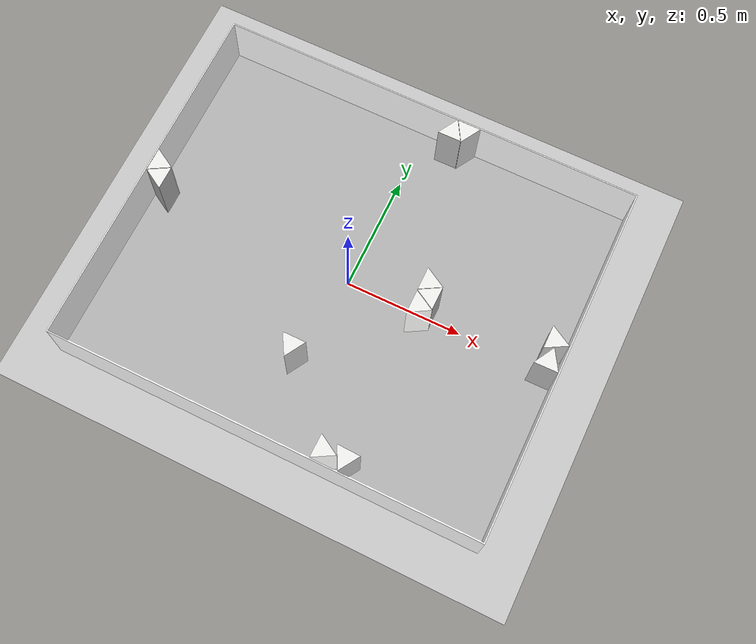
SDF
<sdf version="1.6">
 <world name="default">
  <light name="sun" type="directional">
   <pose>0 0 10 0 -0 0</pose>
   <diffuse>0.8 0.8 0.8 1</diffuse>
   <specular>0.2 0.2 0.2 1</specular>
   <attenuation>
    <range>1000</range>
    <constant>0.9</constant>
    <linear>0.01</linear>
    <quadratic>0.001</quadratic>
   </attenuation>
   <direction>-0.5 0.1 -0.9</direction>
   <spot><inner_angle>0</inner_angle><outer_angle>0</outer_angle><falloff>0</falloff></spot>
  </light>
  <model name="ground_plane">
   <static>1</static>
   <link name="link">
    <collision name="collision">
     <geometry><plane><normal>0 0 1</normal><size>100 100</size></plane></geometry>
     <surface>
      <contact><collide_bitmask>65535</collide_bitmask></contact>
      <friction><ode><mu>100</mu><mu2>50</mu2></ode></friction>
     </surface>
    </collision>
    <visual name="visual">
     <cast_shadows>0</cast_shadows>
     <geometry><plane><normal>0 0 1</normal><size>100 100</size></plane></geometry>
     <material>
      <script><uri>file://media/materials/scripts/gazebo.material</uri><name>Gazebo/Grey</name></script>
     </material>
    </visual>
   </link>
  </model>
  <gravity>0 0 -9.8</gravity>
  <magnetic_field>6e-06 2.3e-05 -4.2e-05</magnetic_field>
  <atmosphere type="adiabatic"/>
  <physics type="ode">
   <max_step_size>0.001</max_step_size>
   <real_time_factor>1</real_time_factor>
   <real_time_update_rate>1000</real_time_update_rate>
  </physics>
  <scene><ambient>0.4 0.4 0.4 1</ambient><background>0.7 0.7 0.7 1</background><shadows>1</shadows></scene>
  <audio><device>default</device></audio>
  <spherical_coordinates>
   <surface_model>EARTH_WGS84</surface_model>
   <latitude_deg>0</latitude_deg>
   <longitude_deg>0</longitude_deg>
   <elevation>0</elevation>
   <heading_deg>0</heading_deg>
  </spherical_coordinates>
  <model name="playground">
   <link name="link_0">
    <inertial>
     <mass>1</mass>
     <inertia>
      <ixx>0.166667</ixx>
      <ixy>0</ixy>
      <ixz>0</ixz>
      <iyy>0.166667</iyy>
      <iyz>0</iyz>
      <izz>0.166667</izz>
     </inertia>
    </inertial>
    <visual name="visual">
     <geometry><mesh><uri>model://playground/meshes/areana.dae</uri><scale>1 1 1</scale></mesh></geometry>
    </visual>
    <collision name="collision">
     <geometry><mesh><uri>model://playground/meshes/areana.dae</uri><scale>1 1 1</scale></mesh></geometry>
     <surface>
      <friction>
       <ode><mu>100</mu><mu2>100</mu2><fdir1>0 0 0</fdir1><slip1>0</slip1><slip2>0</slip2></ode>
       <torsional>
        <coefficient>1</coefficient>
        <patch_radius>0</patch_radius>
        <surface_radius>0</surface_radius>
        <use_patch_radius>1</use_patch_radius>
        <ode><slip>0</slip></ode>
       </torsional>
      </friction>
      <bounce><restitution_coefficient>0</restitution_coefficient><threshold>1e+06</threshold></bounce>
      <contact>
       <collide_without_contact>0</collide_without_contact>
       <collide_without_contact_bitmask>1</collide_without_contact_bitmask>
       <collide_bitmask>1</collide_bitmask>
       <ode>
        <soft_cfm>0</soft_cfm>
        <soft_erp>0.2</soft_erp>
        <kp>1e+13</kp>
        <kd>1</kd>
        <max_vel>0.01</max_vel>
        <min_depth>0</min_depth>
       </ode>
       <bullet>
        <split_impulse>1</split_impulse>
        <split_impulse_penetration_threshold>-0.01</split_impulse_penetration_threshold>
        <soft_cfm>0</soft_cfm>
        <soft_erp>0.2</soft_erp>
        <kp>1e+13</kp>
        <kd>1</kd>
       </bullet>
      </contact>
     </surface>
    </collision>
   </link>
   <static>1</static>
   <pose>0.000704 0 0 0 -0 0</pose>
  </model>
  <model name="home_obstacle">
   <link name="link_1">
    <inertial>
     <mass>1</mass>
     <inertia>
      <ixx>0.166667</ixx>
      <ixy>0</ixy>
      <ixz>0</ixz>
      <iyy>0.166667</iyy>
      <iyz>0</iyz>
      <izz>0.166667</izz>
     </inertia>
    </inertial>
    <visual name="visual">
     <geometry>
      <mesh><uri>model://home_obstacle/meshes/home_obstacle.dae</uri><scale>1 1 1</scale></mesh>
     </geometry>
    </visual>
    <collision name="collision">
     <geometry>
      <mesh><uri>model://home_obstacle/meshes/home_obstacle.dae</uri><scale>1 1 1</scale></mesh>
     </geometry>
     <surface>
      <friction>
       <ode><mu>1</mu><mu2>1</mu2><fdir1>0 0 0</fdir1><slip1>0</slip1><slip2>0</slip2></ode>
       <torsional>
        <coefficient>1</coefficient>
        <patch_radius>0</patch_radius>
        <surface_radius>0</surface_radius>
        <use_patch_radius>1</use_patch_radius>
        <ode><slip>0</slip></ode>
       </torsional>
      </friction>
      <bounce><restitution_coefficient>0</restitution_coefficient><threshold>1e+06</threshold></bounce>
      <contact>
       <collide_without_contact>0</collide_without_contact>
       <collide_without_contact_bitmask>1</collide_without_contact_bitmask>
       <collide_bitmask>1</collide_bitmask>
       <ode>
        <soft_cfm>0</soft_cfm>
        <soft_erp>0.2</soft_erp>
        <kp>1e+13</kp>
        <kd>1</kd>
        <max_vel>0.01</max_vel>
        <min_depth>0</min_depth>
       </ode>
       <bullet>
        <split_impulse>1</split_impulse>
        <split_impulse_penetration_threshold>-0.01</split_impulse_penetration_threshold>
        <soft_cfm>0</soft_cfm>
        <soft_erp>0.2</soft_erp>
        <kp>1e+13</kp>
        <kd>1</kd>
       </bullet>
      </contact>
     </surface>
    </collision>
   </link>
   <static>1</static>
   <pose>0.35 0.011265 0.005 0 -0 0</pose>
  </model>
  <model name="signal_obstacle">
   <link name="link_3">
    <inertial>
     <mass>1</mass>
     <inertia>
      <ixx>0.166667</ixx>
      <ixy>0</ixy>
      <ixz>0</ixz>
      <iyy>0.166667</iyy>
      <iyz>0</iyz>
      <izz>0.166667</izz>
     </inertia>
    </inertial>
    <visual name="visual">
     <geometry>
      <mesh><uri>model://signal_obstacle/meshes/signal_obstacle.dae</uri><scale>1 1 1</scale></mesh>
     </geometry>
    </visual>
    <collision name="collision">
     <geometry>
      <mesh><uri>model://signal_obstacle/meshes/signal_obstacle.dae</uri><scale>1 1 1</scale></mesh>
     </geometry>
     <surface>
      <friction>
       <ode><mu>1</mu><mu2>1</mu2><fdir1>0 0 0</fdir1><slip1>0</slip1><slip2>0</slip2></ode>
       <torsional>
        <coefficient>1</coefficient>
        <patch_radius>0</patch_radius>
        <surface_radius>0</surface_radius>
        <use_patch_radius>1</use_patch_radius>
        <ode><slip>0</slip></ode>
       </torsional>
      </friction>
      <bounce><restitution_coefficient>0</restitution_coefficient><threshold>1e+06</threshold></bounce>
      <contact>
       <collide_without_contact>0</collide_without_contact>
       <collide_without_contact_bitmask>1</collide_without_contact_bitmask>
       <collide_bitmask>1</collide_bitmask>
       <ode>
        <soft_cfm>0</soft_cfm>
        <soft_erp>0.2</soft_erp>
        <kp>1e+13</kp>
        <kd>1</kd>
        <max_vel>0.01</max_vel>
        <min_depth>0</min_depth>
       </ode>
       <bullet>
        <split_impulse>1</split_impulse>
        <split_impulse_penetration_threshold>-0.01</split_impulse_penetration_threshold>
        <soft_cfm>0</soft_cfm>
        <soft_erp>0.2</soft_erp>
        <kp>1e+13</kp>
        <kd>1</kd>
       </bullet>
      </contact>
     </surface>
    </collision>
   </link>
   <static>1</static>
   <pose>0.322533 -0.041605 0.005 0 -0 3.14159</pose>
  </model>
  <model name="crossing_obstacle">
   <link name="link_5">
    <inertial>
     <mass>1</mass>
     <inertia>
      <ixx>0.166667</ixx>
      <ixy>0</ixy>
      <ixz>0</ixz>
      <iyy>0.166667</iyy>
      <iyz>0</iyz>
      <izz>0.166667</izz>
     </inertia>
    </inertial>
    <visual name="visual">
     <geometry>
      <mesh><uri>model://crossing_obstacle/meshes/crossing_obstacle.dae</uri><scale>1 1 1</scale></mesh>
     </geometry>
    </visual>
    <collision name="collision">
     <geometry>
      <mesh><uri>model://crossing_obstacle/meshes/crossing_obstacle.dae</uri><scale>1 1 1</scale></mesh>
     </geometry>
     <surface>
      <friction>
       <ode><mu>1</mu><mu2>1</mu2><fdir1>0 0 0</fdir1><slip1>0</slip1><slip2>0</slip2></ode>
       <torsional>
        <coefficient>1</coefficient>
        <patch_radius>0</patch_radius>
        <surface_radius>0</surface_radius>
        <use_patch_radius>1</use_patch_radius>
        <ode><slip>0</slip></ode>
       </torsional>
      </friction>
      <bounce><restitution_coefficient>0</restitution_coefficient><threshold>1e+06</threshold></bounce>
      <contact>
       <collide_without_contact>0</collide_without_contact>
       <collide_without_contact_bitmask>1</collide_without_contact_bitmask>
       <collide_bitmask>1</collide_bitmask>
       <ode>
        <soft_cfm>0</soft_cfm>
        <soft_erp>0.2</soft_erp>
        <kp>1e+13</kp>
        <kd>1</kd>
        <max_vel>0.01</max_vel>
        <min_depth>0</min_depth>
       </ode>
       <bullet>
        <split_impulse>1</split_impulse>
        <split_impulse_penetration_threshold>-0.01</split_impulse_penetration_threshold>
        <soft_cfm>0</soft_cfm>
        <soft_erp>0.2</soft_erp>
        <kp>1e+13</kp>
        <kd>1</kd>
       </bullet>
      </contact>
     </surface>
    </collision>
   </link>
   <static>1</static>
   <pose>-0.05 -0.4 0.005 0 0 -0.523599</pose>
  </model>
  <model name="turn_obstacle">
   <link name="link_6">
    <inertial>
     <mass>1</mass>
     <inertia>
      <ixx>0.166667</ixx>
      <ixy>0</ixy>
      <ixz>0</ixz>
      <iyy>0.166667</iyy>
      <iyz>0</iyz>
      <izz>0.166667</izz>
     </inertia>
    </inertial>
    <visual name="visual">
     <geometry>
      <mesh><uri>model://turn_obstacle/meshes/turn_obstacle.dae</uri><scale>1 1 1</scale></mesh>
     </geometry>
    </visual>
    <collision name="collision">
     <geometry>
      <mesh><uri>model://turn_obstacle/meshes/turn_obstacle.dae</uri><scale>1 1 1</scale></mesh>
     </geometry>
     <surface>
      <friction>
       <ode><mu>1</mu><mu2>1</mu2><fdir1>0 0 0</fdir1><slip1>0</slip1><slip2>0</slip2></ode>
       <torsional>
        <coefficient>1</coefficient>
        <patch_radius>0</patch_radius>
        <surface_radius>0</surface_radius>
        <use_patch_radius>1</use_patch_radius>
        <ode><slip>0</slip></ode>
       </torsional>
      </friction>
      <bounce><restitution_coefficient>0</restitution_coefficient><threshold>1e+06</threshold></bounce>
      <contact>
       <collide_without_contact>0</collide_without_contact>
       <collide_without_contact_bitmask>1</collide_without_contact_bitmask>
       <collide_bitmask>1</collide_bitmask>
       <ode>
        <soft_cfm>0</soft_cfm>
        <soft_erp>0.2</soft_erp>
        <kp>1e+13</kp>
        <kd>1</kd>
        <max_vel>0.01</max_vel>
        <min_depth>0</min_depth>
       </ode>
       <bullet>
        <split_impulse>1</split_impulse>
        <split_impulse_penetration_threshold>-0.01</split_impulse_penetration_threshold>
        <soft_cfm>0</soft_cfm>
        <soft_erp>0.2</soft_erp>
        <kp>1e+13</kp>
        <kd>1</kd>
       </bullet>
      </contact>
     </surface>
    </collision>
   </link>
   <static>1</static>
   <pose>-0.852373 -3.5e-05 0.005 0 0 -2.0944</pose>
  </model>
  <model name="parking_obstacle">
   <link name="link_2">
    <inertial>
     <mass>1</mass>
     <inertia>
      <ixx>0.166667</ixx>
      <ixy>0</ixy>
      <ixz>0</ixz>
      <iyy>0.166667</iyy>
      <iyz>0</iyz>
      <izz>0.166667</izz>
     </inertia>
    </inertial>
    <visual name="visual">
     <geometry>
      <mesh><uri>model://parking_obstacle/meshes/parking_obstacle.dae</uri><scale>1 1 1</scale></mesh>
     </geometry>
    </visual>
    <collision name="collision">
     <geometry>
      <mesh><uri>model://parking_obstacle/meshes/parking_obstacle.dae</uri><scale>1 1 1</scale></mesh>
     </geometry>
     <surface>
      <friction>
       <ode><mu>1</mu><mu2>1</mu2><fdir1>0 0 0</fdir1><slip1>0</slip1><slip2>0</slip2></ode>
       <torsional>
        <coefficient>1</coefficient>
        <patch_radius>0</patch_radius>
        <surface_radius>0</surface_radius>
        <use_patch_radius>1</use_patch_radius>
        <ode><slip>0</slip></ode>
       </torsional>
      </friction>
      <bounce><restitution_coefficient>0</restitution_coefficient><threshold>1e+06</threshold></bounce>
      <contact>
       <collide_without_contact>0</collide_without_contact>
       <collide_without_contact_bitmask>1</collide_without_contact_bitmask>
       <collide_bitmask>1</collide_bitmask>
       <ode>
        <soft_cfm>0</soft_cfm>
        <soft_erp>0.2</soft_erp>
        <kp>1e+13</kp>
        <kd>1</kd>
        <max_vel>0.01</max_vel>
        <min_depth>0</min_depth>
       </ode>
       <bullet>
        <split_impulse>1</split_impulse>
        <split_impulse_penetration_threshold>-0.01</split_impulse_penetration_threshold>
        <soft_cfm>0</soft_cfm>
        <soft_erp>0.2</soft_erp>
        <kp>1e+13</kp>
        <kd>1</kd>
       </bullet>
      </contact>
     </surface>
    </collision>
   </link>
   <static>1</static>
   <pose>0.863797 -0.031678 0.005 0 -0 0.540062</pose>
  </model>
  <model name="turn_obstacle_clone">
   <link name="link_6">
    <inertial>
     <mass>1</mass>
     <inertia>
      <ixx>0.166667</ixx>
      <ixy>0</ixy>
      <ixz>0</ixz>
      <iyy>0.166667</iyy>
      <iyz>0</iyz>
      <izz>0.166667</izz>
     </inertia>
    </inertial>
    <visual name="visual">
     <geometry>
      <mesh><uri>model://turn_obstacle/meshes/turn_obstacle.dae</uri><scale>1 1 1</scale></mesh>
     </geometry>
    </visual>
    <collision name="collision">
     <geometry>
      <mesh><uri>model://turn_obstacle/meshes/turn_obstacle.dae</uri><scale>1 1 1</scale></mesh>
     </geometry>
     <surface>
      <friction>
       <ode><mu>1</mu><mu2>1</mu2><fdir1>0 0 0</fdir1><slip1>0</slip1><slip2>0</slip2></ode>
       <torsional>
        <coefficient>1</coefficient>
        <patch_radius>0</patch_radius>
        <surface_radius>0</surface_radius>
        <use_patch_radius>1</use_patch_radius>
        <ode><slip>0</slip></ode>
       </torsional>
      </friction>
      <bounce><restitution_coefficient>0</restitution_coefficient><threshold>1e+06</threshold></bounce>
      <contact>
       <collide_without_contact>0</collide_without_contact>
       <collide_without_contact_bitmask>1</collide_without_contact_bitmask>
       <collide_bitmask>1</collide_bitmask>
       <ode>
        <soft_cfm>0</soft_cfm>
        <soft_erp>0.2</soft_erp>
        <kp>1e+13</kp>
        <kd>1</kd>
        <max_vel>0.01</max_vel>
        <min_depth>0</min_depth>
       </ode>
       <bullet>
        <split_impulse>1</split_impulse>
        <split_impulse_penetration_threshold>-0.01</split_impulse_penetration_threshold>
        <soft_cfm>0</soft_cfm>
        <soft_erp>0.2</soft_erp>
        <kp>1e+13</kp>
        <kd>1</kd>
       </bullet>
      </contact>
     </surface>
    </collision>
   </link>
   <static>1</static>
   <pose>0.321456 0.063409 0.005 0 -0 3.14159</pose>
  </model>
  <model name="stop_obstacle">
   <link name="link_4">
    <inertial>
     <mass>1</mass>
     <inertia>
      <ixx>0.166667</ixx>
      <ixy>0</ixy>
      <ixz>0</ixz>
      <iyy>0.166667</iyy>
      <iyz>0</iyz>
      <izz>0.166667</izz>
     </inertia>
    </inertial>
    <visual name="visual">
     <geometry>
      <mesh><uri>model://stop_obstacle/meshes/stop_obstacle.dae</uri><scale>1 1 1</scale></mesh>
     </geometry>
    </visual>
    <collision name="collision">
     <geometry>
      <mesh><uri>model://stop_obstacle/meshes/stop_obstacle.dae</uri><scale>1 1 1</scale></mesh>
     </geometry>
     <surface>
      <friction>
       <ode><mu>1</mu><mu2>1</mu2><fdir1>0 0 0</fdir1><slip1>0</slip1><slip2>0</slip2></ode>
       <torsional>
        <coefficient>1</coefficient>
        <patch_radius>0</patch_radius>
        <surface_radius>0</surface_radius>
        <use_patch_radius>1</use_patch_radius>
        <ode><slip>0</slip></ode>
       </torsional>
      </friction>
      <bounce><restitution_coefficient>0</restitution_coefficient><threshold>1e+06</threshold></bounce>
      <contact>
       <collide_without_contact>0</collide_without_contact>
       <collide_without_contact_bitmask>1</collide_without_contact_bitmask>
       <collide_bitmask>1</collide_bitmask>
       <ode>
        <soft_cfm>0</soft_cfm>
        <soft_erp>0.2</soft_erp>
        <kp>1e+13</kp>
        <kd>1</kd>
        <max_vel>0.01</max_vel>
        <min_depth>0</min_depth>
       </ode>
       <bullet>
        <split_impulse>1</split_impulse>
        <split_impulse_penetration_threshold>-0.01</split_impulse_penetration_threshold>
        <soft_cfm>0</soft_cfm>
        <soft_erp>0.2</soft_erp>
        <kp>1e+13</kp>
        <kd>1</kd>
       </bullet>
      </contact>
     </surface>
    </collision>
   </link>
   <static>1</static>
   <pose>0.240743 -0.710985 0.005 0 -0 -3.14128</pose>
  </model>
  <model name="turn_obstacle_clone_clone">
   <link name="link_6">
    <inertial>
     <mass>1</mass>
     <inertia>
      <ixx>0.166667</ixx>
      <ixy>0</ixy>
      <ixz>0</ixz>
      <iyy>0.166667</iyy>
      <iyz>0</iyz>
      <izz>0.166667</izz>
     </inertia>
    </inertial>
    <visual name="visual">
     <geometry>
      <mesh><uri>model://turn_obstacle/meshes/turn_obstacle.dae</uri><scale>1 1 1</scale></mesh>
     </geometry>
    </visual>
    <collision name="collision">
     <geometry>
      <mesh><uri>model://turn_obstacle/meshes/turn_obstacle.dae</uri><scale>1 1 1</scale></mesh>
     </geometry>
     <surface>
      <friction>
       <ode><mu>1</mu><mu2>1</mu2><fdir1>0 0 0</fdir1><slip1>0</slip1><slip2>0</slip2></ode>
       <torsional>
        <coefficient>1</coefficient>
        <patch_radius>0</patch_radius>
        <surface_radius>0</surface_radius>
        <use_patch_radius>1</use_patch_radius>
        <ode><slip>0</slip></ode>
       </torsional>
      </friction>
      <bounce><restitution_coefficient>0</restitution_coefficient><threshold>1e+06</threshold></bounce>
      <contact>
       <collide_without_contact>0</collide_without_contact>
       <collide_without_contact_bitmask>1</collide_without_contact_bitmask>
       <collide_bitmask>1</collide_bitmask>
       <ode>
        <soft_cfm>0</soft_cfm>
        <soft_erp>0.2</soft_erp>
        <kp>1e+13</kp>
        <kd>1</kd>
        <max_vel>0.01</max_vel>
        <min_depth>0</min_depth>
       </ode>
       <bullet>
        <split_impulse>1</split_impulse>
        <split_impulse_penetration_threshold>-0.01</split_impulse_penetration_threshold>
        <soft_cfm>0</soft_cfm>
        <soft_erp>0.2</soft_erp>
        <kp>1e+13</kp>
        <kd>1</kd>
       </bullet>
      </contact>
     </surface>
    </collision>
   </link>
   <static>1</static>
   <pose>0.329283 -0.702271 0.005 0 -0 -0.55714</pose>
  </model>
  <model name="turn_obstacle_clone_0">
   <link name="link_6">
    <inertial>
     <mass>1</mass>
     <inertia>
      <ixx>0.166667</ixx>
      <ixy>0</ixy>
      <ixz>0</ixz>
      <iyy>0.166667</iyy>
      <iyz>0</iyz>
      <izz>0.166667</izz>
     </inertia>
    </inertial>
    <visual name="visual">
     <geometry>
      <mesh><uri>model://turn_obstacle/meshes/turn_obstacle.dae</uri><scale>1 1 1</scale></mesh>
     </geometry>
    </visual>
    <collision name="collision">
     <geometry>
      <mesh><uri>model://turn_obstacle/meshes/turn_obstacle.dae</uri><scale>1 1 1</scale></mesh>
     </geometry>
     <surface>
      <friction>
       <ode><mu>1</mu><mu2>1</mu2><fdir1>0 0 0</fdir1><slip1>0</slip1><slip2>0</slip2></ode>
       <torsional>
        <coefficient>1</coefficient>
        <patch_radius>0</patch_radius>
        <surface_radius>0</surface_radius>
        <use_patch_radius>1</use_patch_radius>
        <ode><slip>0</slip></ode>
       </torsional>
      </friction>
      <bounce><restitution_coefficient>0</restitution_coefficient><threshold>1e+06</threshold></bounce>
      <contact>
       <collide_without_contact>0</collide_without_contact>
       <collide_without_contact_bitmask>1</collide_without_contact_bitmask>
       <collide_bitmask>1</collide_bitmask>
       <ode>
        <soft_cfm>0</soft_cfm>
        <soft_erp>0.2</soft_erp>
        <kp>1e+13</kp>
        <kd>1</kd>
        <max_vel>0.01</max_vel>
        <min_depth>0</min_depth>
       </ode>
       <bullet>
        <split_impulse>1</split_impulse>
        <split_impulse_penetration_threshold>-0.01</split_impulse_penetration_threshold>
        <soft_cfm>0</soft_cfm>
        <soft_erp>0.2</soft_erp>
        <kp>1e+13</kp>
        <kd>1</kd>
       </bullet>
      </contact>
     </surface>
    </collision>
   </link>
   <static>1</static>
   <pose>0.183114 0.729903 0.005 0 -0 -2.61623</pose>
  </model>
  <model name="turn_obstacle_clone_1">
   <link name="link_6">
    <inertial>
     <mass>1</mass>
     <inertia>
      <ixx>0.166667</ixx>
      <ixy>0</ixy>
      <ixz>0</ixz>
      <iyy>0.166667</iyy>
      <iyz>0</iyz>
      <izz>0.166667</izz>
     </inertia>
    </inertial>
    <visual name="visual">
     <geometry>
      <mesh><uri>model://turn_obstacle/meshes/turn_obstacle.dae</uri><scale>1 1 1</scale></mesh>
     </geometry>
    </visual>
    <collision name="collision">
     <geometry>
      <mesh><uri>model://turn_obstacle/meshes/turn_obstacle.dae</uri><scale>1 1 1</scale></mesh>
     </geometry>
     <surface>
      <friction>
       <ode><mu>1</mu><mu2>1</mu2><fdir1>0 0 0</fdir1><slip1>0</slip1><slip2>0</slip2></ode>
       <torsional>
        <coefficient>1</coefficient>
        <patch_radius>0</patch_radius>
        <surface_radius>0</surface_radius>
        <use_patch_radius>1</use_patch_radius>
        <ode><slip>0</slip></ode>
       </torsional>
      </friction>
      <bounce><restitution_coefficient>0</restitution_coefficient><threshold>1e+06</threshold></bounce>
      <contact>
       <collide_without_contact>0</collide_without_contact>
       <collide_without_contact_bitmask>1</collide_without_contact_bitmask>
       <collide_bitmask>1</collide_bitmask>
       <ode>
        <soft_cfm>0</soft_cfm>
        <soft_erp>0.2</soft_erp>
        <kp>1e+13</kp>
        <kd>1</kd>
        <max_vel>0.01</max_vel>
        <min_depth>0</min_depth>
       </ode>
       <bullet>
        <split_impulse>1</split_impulse>
        <split_impulse_penetration_threshold>-0.01</split_impulse_penetration_threshold>
        <soft_cfm>0</soft_cfm>
        <soft_erp>0.2</soft_erp>
        <kp>1e+13</kp>
        <kd>1</kd>
       </bullet>
      </contact>
     </surface>
    </collision>
   </link>
   <static>1</static>
   <pose>0.130871 0.702613 0.005 0 -0 2.62836</pose>
  </model>
  <model name="turn_obstacle_clone_2">
   <link name="link_6">
    <inertial>
     <mass>1</mass>
     <inertia>
      <ixx>0.166667</ixx>
      <ixy>0</ixy>
      <ixz>0</ixz>
      <iyy>0.166667</iyy>
      <iyz>0</iyz>
      <izz>0.166667</izz>
     </inertia>
    </inertial>
    <visual name="visual">
     <geometry>
      <mesh><uri>model://turn_obstacle/meshes/turn_obstacle.dae</uri><scale>1 1 1</scale></mesh>
     </geometry>
    </visual>
    <collision name="collision">
     <geometry>
      <mesh><uri>model://turn_obstacle/meshes/turn_obstacle.dae</uri><scale>1 1 1</scale></mesh>
     </geometry>
     <surface>
      <friction>
       <ode><mu>1</mu><mu2>1</mu2><fdir1>0 0 0</fdir1><slip1>0</slip1><slip2>0</slip2></ode>
       <torsional>
        <coefficient>1</coefficient>
        <patch_radius>0</patch_radius>
        <surface_radius>0</surface_radius>
        <use_patch_radius>1</use_patch_radius>
        <ode><slip>0</slip></ode>
       </torsional>
      </friction>
      <bounce><restitution_coefficient>0</restitution_coefficient><threshold>1e+06</threshold></bounce>
      <contact>
       <collide_without_contact>0</collide_without_contact>
       <collide_without_contact_bitmask>1</collide_without_contact_bitmask>
       <collide_bitmask>1</collide_bitmask>
       <ode>
        <soft_cfm>0</soft_cfm>
        <soft_erp>0.2</soft_erp>
        <kp>1e+13</kp>
        <kd>1</kd>
        <max_vel>0.01</max_vel>
        <min_depth>0</min_depth>
       </ode>
       <bullet>
        <split_impulse>1</split_impulse>
        <split_impulse_penetration_threshold>-0.01</split_impulse_penetration_threshold>
        <soft_cfm>0</soft_cfm>
        <soft_erp>0.2</soft_erp>
        <kp>1e+13</kp>
        <kd>1</kd>
       </bullet>
      </contact>
     </surface>
    </collision>
   </link>
   <static>1</static>
   <pose>0.85411 0.0574 0.005 0 -0 1.0472</pose>
  </model>
  <model name="turn_obstacle_clone_3">
   <link name="link_6">
    <inertial>
     <mass>1</mass>
     <inertia>
      <ixx>0.166667</ixx>
      <ixy>0</ixy>
      <ixz>0</ixz>
      <iyy>0.166667</iyy>
      <iyz>0</iyz>
      <izz>0.166667</izz>
     </inertia>
    </inertial>
    <visual name="visual">
     <geometry>
      <mesh><uri>model://turn_obstacle/meshes/turn_obstacle.dae</uri><scale>1 1 1</scale></mesh>
     </geometry>
    </visual>
    <collision name="collision">
     <geometry>
      <mesh><uri>model://turn_obstacle/meshes/turn_obstacle.dae</uri><scale>1 1 1</scale></mesh>
     </geometry>
     <surface>
      <friction>
       <ode><mu>1</mu><mu2>1</mu2><fdir1>0 0 0</fdir1><slip1>0</slip1><slip2>0</slip2></ode>
       <torsional>
        <coefficient>1</coefficient>
        <patch_radius>0</patch_radius>
        <surface_radius>0</surface_radius>
        <use_patch_radius>1</use_patch_radius>
        <ode><slip>0</slip></ode>
       </torsional>
      </friction>
      <bounce><restitution_coefficient>0</restitution_coefficient><threshold>1e+06</threshold></bounce>
      <contact>
       <collide_without_contact>0</collide_without_contact>
       <collide_without_contact_bitmask>1</collide_without_contact_bitmask>
       <collide_bitmask>1</collide_bitmask>
       <ode>
        <soft_cfm>0</soft_cfm>
        <soft_erp>0.2</soft_erp>
        <kp>1e+13</kp>
        <kd>1</kd>
        <max_vel>0.01</max_vel>
        <min_depth>0</min_depth>
       </ode>
       <bullet>
        <split_impulse>1</split_impulse>
        <split_impulse_penetration_threshold>-0.01</split_impulse_penetration_threshold>
        <soft_cfm>0</soft_cfm>
        <soft_erp>0.2</soft_erp>
        <kp>1e+13</kp>
        <kd>1</kd>
       </bullet>
      </contact>
     </surface>
    </collision>
   </link>
   <static>1</static>
   <pose>-0.881334 0.052455 0.005 0 0 -1.0472</pose>
  </model>
 </world>
</sdf>
